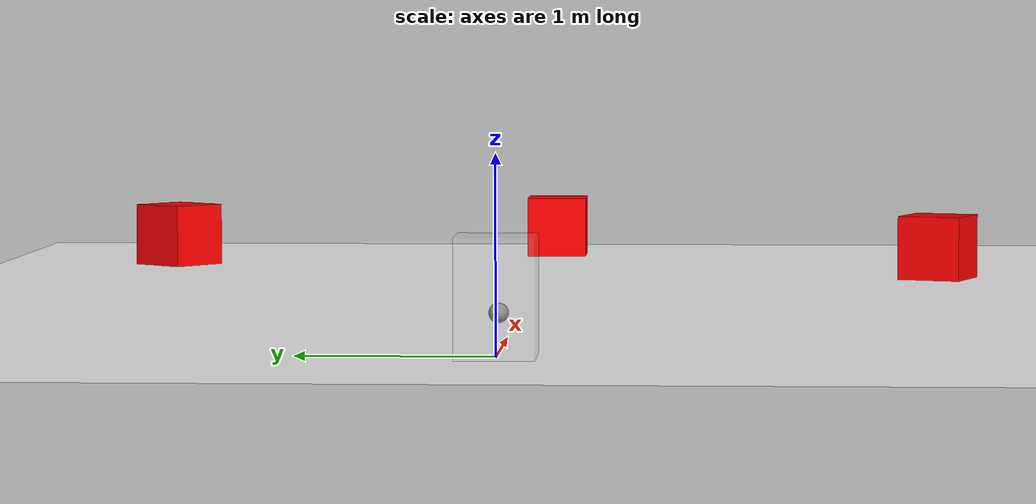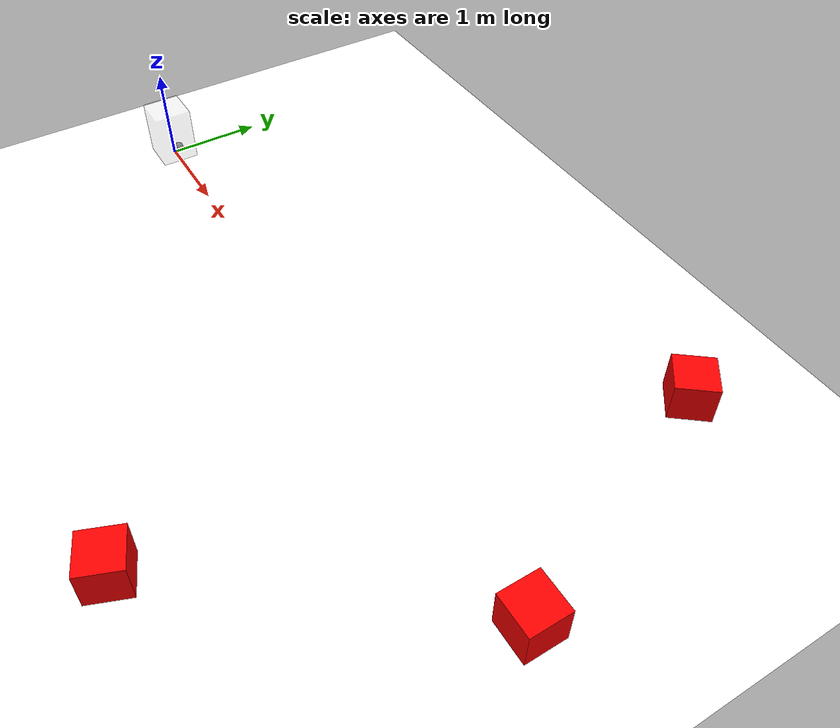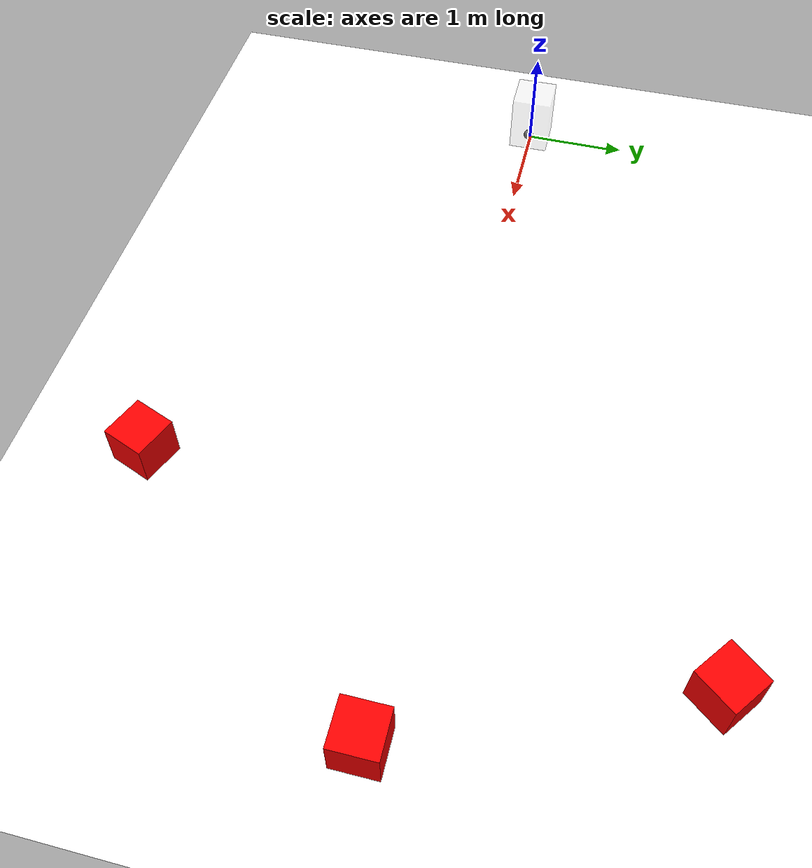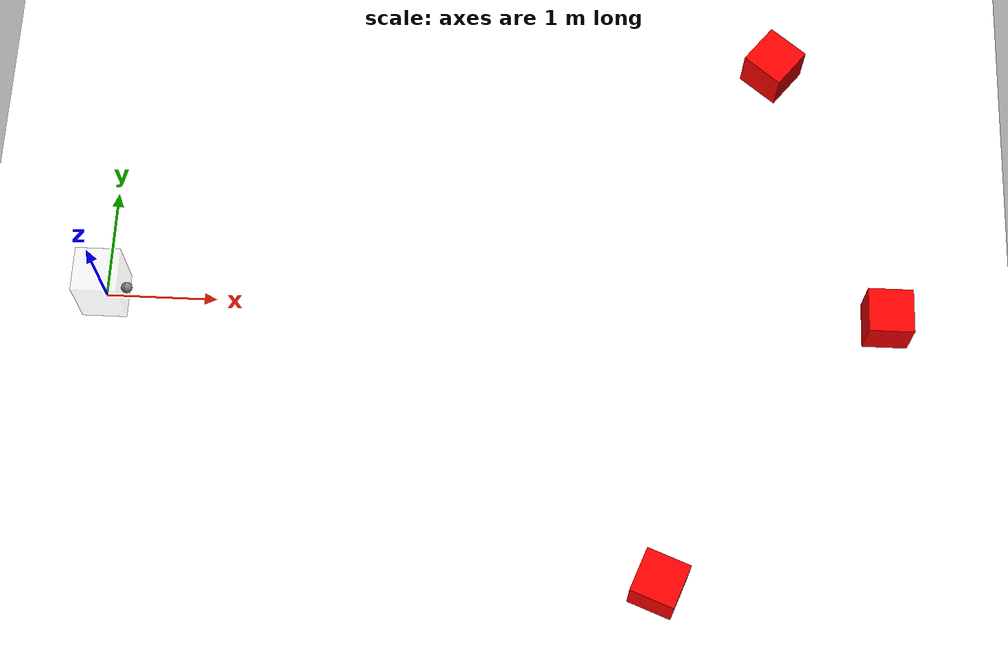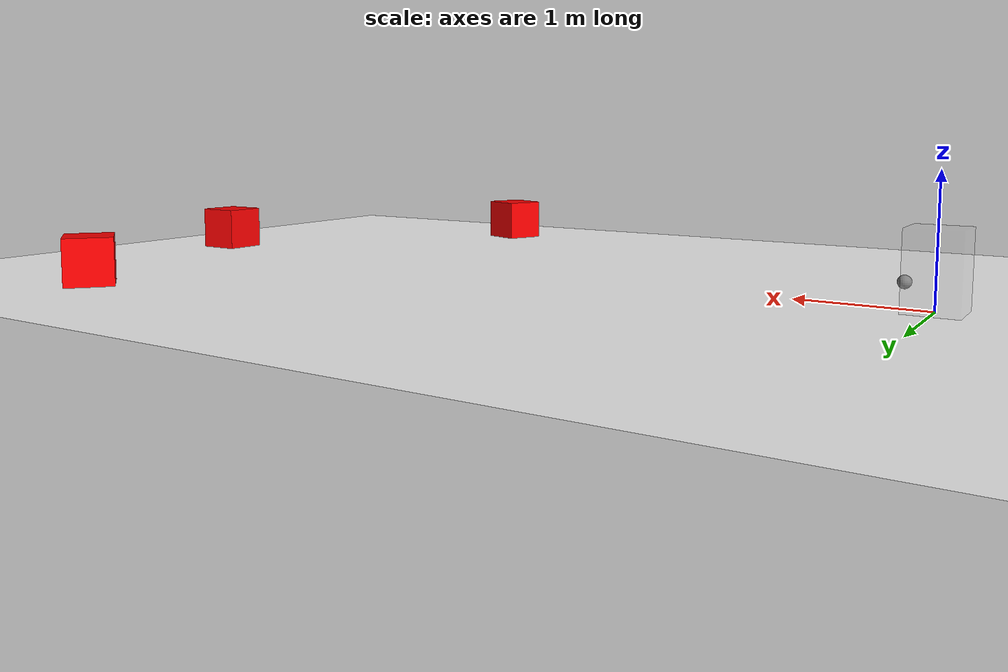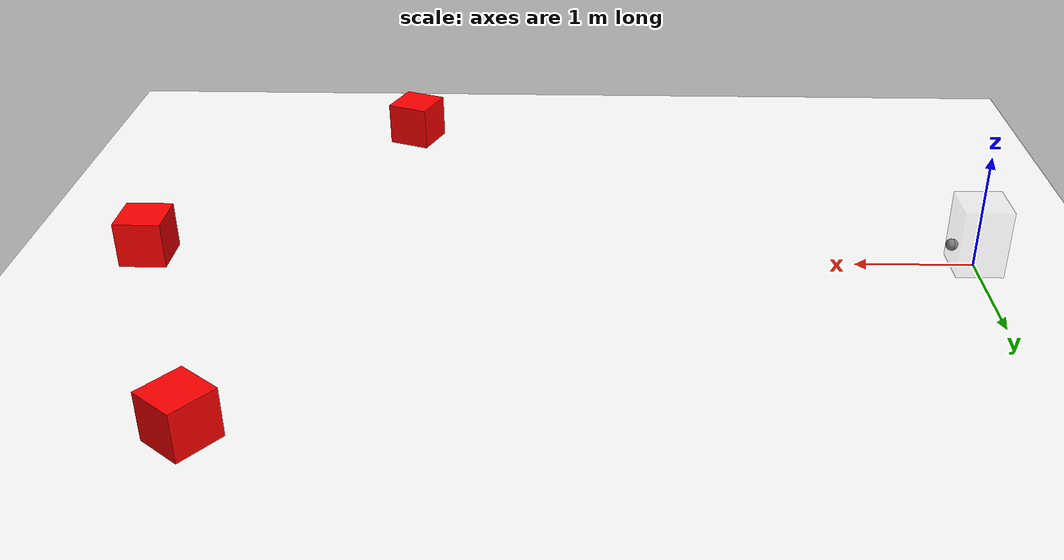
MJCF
<mujoco model="Laser Example">
    <option timestep="0.001" gravity="0 0 -9.81" cone="elliptic" />
    <compiler angle="radian" />

    <visual>
        <headlight ambient="0.4 0.4 0.4" diffuse="0.4 0.4 0.4" specular="0.0 0.0 0.0" active="1" />
    </visual>

    <asset>
        <texture builtin="checker" height="512" name="texplane" rgb1=".2 .3 .4" rgb2=".1 .15 .2" type="2d" width="512" />
        <material name="MatPlane" reflectance="0.5" shininess="0.01" specular="0.1" texrepeat="1 1" texture="texplane" texuniform="true" />
    </asset>

    <worldbody>
        <light pos="0 0 1000" castshadow="false" />
        <geom name="ground_plane" type="plane" size="10 10 10" material="MatPlane" rgba="1 1 1 1"/>

        <body name="obs0" pos="5. -2.5 0.2" euler="0 0 1.2">
            <freejoint />
            <geom type="box" size="0.2 0.2 0.2" rgba="1. 0 0. 1." />
        </body>

        <body name="obs1" pos="7. 0. 0.2">
            <freejoint />
            <geom type="box" size="0.2 0.2 0.2" rgba="1. 0 0. 1." />
        </body>

        <body name="obs2" pos="6. 2.5 0.2" euler="0 0 .9">
            <freejoint />
            <geom type="box" size="0.2 0.2 0.2" rgba="1. 0 0. 1." />
        </body>

        <body name="laser" pos="0 0 .3">
            <geom type="box" size=".2 .2 .3" rgba="0.8 0.8 0.8 0.2" />
            <site pos=".21 0 -0.1" name="laser_site" size="0.05" />
        </body>
    </worldbody>
</mujoco>
